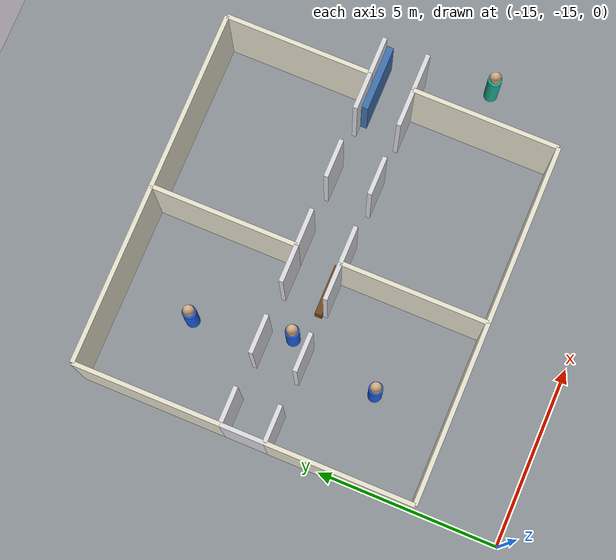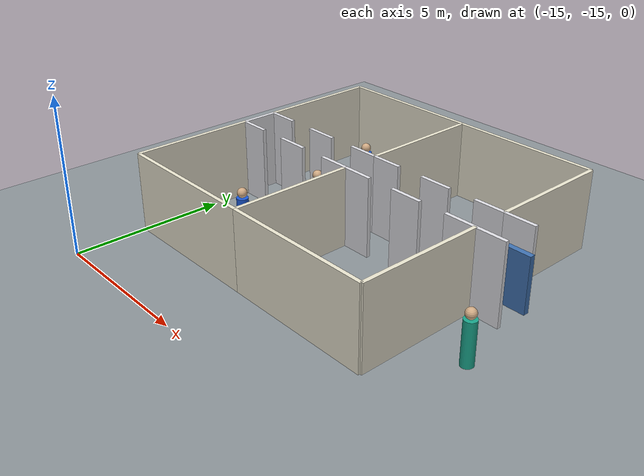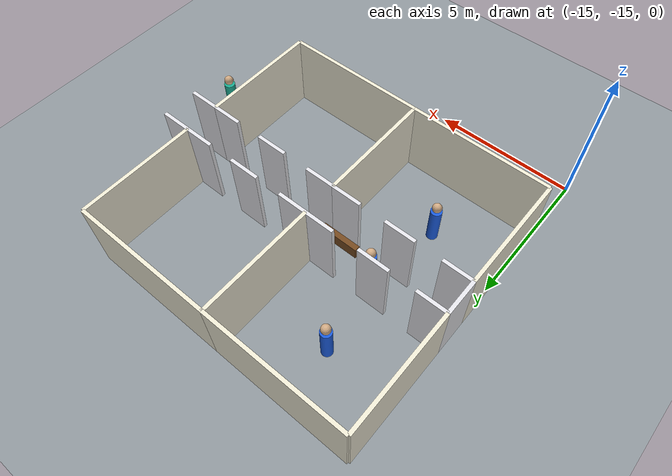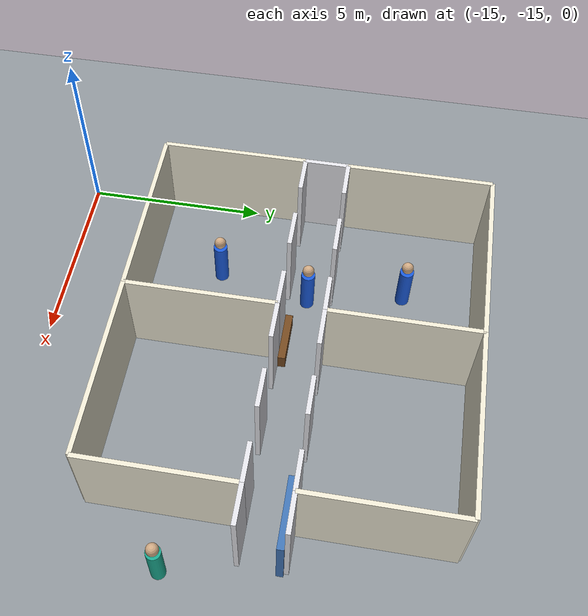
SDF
<sdf version="1.9">
 <world name="school_arena">
  <model name="ground">
   <static>true</static>
   <link name="link">
    <collision name="collision">
     <geometry><plane><normal>0 0 1</normal><size>80 80</size></plane></geometry>
    </collision>
    <visual name="visual">
     <geometry><plane><normal>0 0 1</normal><size>80 80</size></plane></geometry>
     <material><ambient>0.55 0.58 0.60 1</ambient><diffuse>0.55 0.58 0.60 1</diffuse></material>
    </visual>
   </link>
  </model>
  <model name="classroom_01_south">
   <static>true</static>
   <pose>-12.5500 -12.6000 1.3000 0 0 0</pose>
   <link name="link">
    <collision name="collision"><geometry><box><size>4.9000 0.1200 2.6000</size></box></geometry></collision>
    <visual name="visual">
     <geometry><box><size>4.9000 0.1200 2.6000</size></box></geometry>
     <material><ambient>0.92 0.90 0.82 1</ambient><diffuse>0.92 0.90 0.82 1</diffuse></material>
    </visual>
   </link>
  </model>
  <model name="classroom_01_west">
   <static>true</static>
   <pose>-15.0000 -10.6000 1.3000 0 0 0</pose>
   <link name="link">
    <collision name="collision"><geometry><box><size>0.1200 4.0000 2.6000</size></box></geometry></collision>
    <visual name="visual">
     <geometry><box><size>0.1200 4.0000 2.6000</size></box></geometry>
     <material><ambient>0.92 0.90 0.82 1</ambient><diffuse>0.92 0.90 0.82 1</diffuse></material>
    </visual>
   </link>
  </model>
  <model name="classroom_01_east">
   <static>true</static>
   <pose>-10.1000 -10.6000 1.3000 0 0 0</pose>
   <link name="link">
    <collision name="collision"><geometry><box><size>0.1200 4.0000 2.6000</size></box></geometry></collision>
    <visual name="visual">
     <geometry><box><size>0.1200 4.0000 2.6000</size></box></geometry>
     <material><ambient>0.92 0.90 0.82 1</ambient><diffuse>0.92 0.90 0.82 1</diffuse></material>
    </visual>
   </link>
  </model>
  <model name="classroom_01_front_0">
   <static>true</static>
   <pose>-14.4900 -8.6000 1.3000 0 0 0</pose>
   <link name="link">
    <collision name="collision"><geometry><box><size>1.0200 0.1200 2.6000</size></box></geometry></collision>
    <visual name="visual">
     <geometry><box><size>1.0200 0.1200 2.6000</size></box></geometry>
     <material><ambient>0.88 0.88 0.90 1</ambient><diffuse>0.88 0.88 0.90 1</diffuse></material>
    </visual>
   </link>
  </model>
  <model name="classroom_01_front_1">
   <static>true</static>
   <pose>-12.5500 -8.6000 1.3000 0 0 0</pose>
   <link name="link">
    <collision name="collision"><geometry><box><size>1.0600 0.1200 2.6000</size></box></geometry></collision>
    <visual name="visual">
     <geometry><box><size>1.0600 0.1200 2.6000</size></box></geometry>
     <material><ambient>0.88 0.88 0.90 1</ambient><diffuse>0.88 0.88 0.90 1</diffuse></material>
    </visual>
   </link>
  </model>
  <model name="classroom_01_front_2">
   <static>true</static>
   <pose>-10.6100 -8.6000 1.3000 0 0 0</pose>
   <link name="link">
    <collision name="collision"><geometry><box><size>1.0200 0.1200 2.6000</size></box></geometry></collision>
    <visual name="visual">
     <geometry><box><size>1.0200 0.1200 2.6000</size></box></geometry>
     <material><ambient>0.88 0.88 0.90 1</ambient><diffuse>0.88 0.88 0.90 1</diffuse></material>
    </visual>
   </link>
  </model>
  <model name="classroom_02_south">
   <static>true</static>
   <pose>-7.6500 -12.6000 1.3000 0 0 0</pose>
   <link name="link">
    <collision name="collision"><geometry><box><size>4.9000 0.1200 2.6000</size></box></geometry></collision>
    <visual name="visual">
     <geometry><box><size>4.9000 0.1200 2.6000</size></box></geometry>
     <material><ambient>0.92 0.90 0.82 1</ambient><diffuse>0.92 0.90 0.82 1</diffuse></material>
    </visual>
   </link>
  </model>
  <model name="classroom_02_west">
   <static>true</static>
   <pose>-10.1000 -10.6000 1.3000 0 0 0</pose>
   <link name="link">
    <collision name="collision"><geometry><box><size>0.1200 4.0000 2.6000</size></box></geometry></collision>
    <visual name="visual">
     <geometry><box><size>0.1200 4.0000 2.6000</size></box></geometry>
     <material><ambient>0.92 0.90 0.82 1</ambient><diffuse>0.92 0.90 0.82 1</diffuse></material>
    </visual>
   </link>
  </model>
  <model name="classroom_02_east">
   <static>true</static>
   <pose>-5.2000 -10.6000 1.3000 0 0 0</pose>
   <link name="link">
    <collision name="collision"><geometry><box><size>0.1200 4.0000 2.6000</size></box></geometry></collision>
    <visual name="visual">
     <geometry><box><size>0.1200 4.0000 2.6000</size></box></geometry>
     <material><ambient>0.92 0.90 0.82 1</ambient><diffuse>0.92 0.90 0.82 1</diffuse></material>
    </visual>
   </link>
  </model>
  <model name="classroom_02_front_0">
   <static>true</static>
   <pose>-9.5900 -8.6000 1.3000 0 0 0</pose>
   <link name="link">
    <collision name="collision"><geometry><box><size>1.0200 0.1200 2.6000</size></box></geometry></collision>
    <visual name="visual">
     <geometry><box><size>1.0200 0.1200 2.6000</size></box></geometry>
     <material><ambient>0.88 0.88 0.90 1</ambient><diffuse>0.88 0.88 0.90 1</diffuse></material>
    </visual>
   </link>
  </model>
  <model name="classroom_02_front_1">
   <static>true</static>
   <pose>-7.6500 -8.6000 1.3000 0 0 0</pose>
   <link name="link">
    <collision name="collision"><geometry><box><size>1.0600 0.1200 2.6000</size></box></geometry></collision>
    <visual name="visual">
     <geometry><box><size>1.0600 0.1200 2.6000</size></box></geometry>
     <material><ambient>0.88 0.88 0.90 1</ambient><diffuse>0.88 0.88 0.90 1</diffuse></material>
    </visual>
   </link>
  </model>
  <model name="classroom_02_front_2">
   <static>true</static>
   <pose>-5.7100 -8.6000 1.3000 0 0 0</pose>
   <link name="link">
    <collision name="collision"><geometry><box><size>1.0200 0.1200 2.6000</size></box></geometry></collision>
    <visual name="visual">
     <geometry><box><size>1.0200 0.1200 2.6000</size></box></geometry>
     <material><ambient>0.88 0.88 0.90 1</ambient><diffuse>0.88 0.88 0.90 1</diffuse></material>
    </visual>
   </link>
  </model>
  <model name="classroom_03_west">
   <static>true</static>
   <pose>-5.2000 -10.6000 1.3000 0 0 0</pose>
   <link name="link">
    <collision name="collision"><geometry><box><size>0.1200 4.0000 2.6000</size></box></geometry></collision>
    <visual name="visual">
     <geometry><box><size>0.1200 4.0000 2.6000</size></box></geometry>
     <material><ambient>0.92 0.90 0.82 1</ambient><diffuse>0.92 0.90 0.82 1</diffuse></material>
    </visual>
   </link>
  </model>
  <model name="classroom_03_front_0">
   <static>true</static>
   <pose>-4.6900 -8.6000 1.3000 0 0 0</pose>
   <link name="link">
    <collision name="collision"><geometry><box><size>1.0200 0.1200 2.6000</size></box></geometry></collision>
    <visual name="visual">
     <geometry><box><size>1.0200 0.1200 2.6000</size></box></geometry>
     <material><ambient>0.88 0.88 0.90 1</ambient><diffuse>0.88 0.88 0.90 1</diffuse></material>
    </visual>
   </link>
  </model>
  <model name="classroom_07_north">
   <static>true</static>
   <pose>-12.5500 -3.4000 1.3000 0 0 0</pose>
   <link name="link">
    <collision name="collision"><geometry><box><size>4.9000 0.1200 2.6000</size></box></geometry></collision>
    <visual name="visual">
     <geometry><box><size>4.9000 0.1200 2.6000</size></box></geometry>
     <material><ambient>0.92 0.90 0.82 1</ambient><diffuse>0.92 0.90 0.82 1</diffuse></material>
    </visual>
   </link>
  </model>
  <model name="classroom_07_west">
   <static>true</static>
   <pose>-15.0000 -5.4000 1.3000 0 0 0</pose>
   <link name="link">
    <collision name="collision"><geometry><box><size>0.1200 4.0000 2.6000</size></box></geometry></collision>
    <visual name="visual">
     <geometry><box><size>0.1200 4.0000 2.6000</size></box></geometry>
     <material><ambient>0.92 0.90 0.82 1</ambient><diffuse>0.92 0.90 0.82 1</diffuse></material>
    </visual>
   </link>
  </model>
  <model name="classroom_07_east">
   <static>true</static>
   <pose>-10.1000 -5.4000 1.3000 0 0 0</pose>
   <link name="link">
    <collision name="collision"><geometry><box><size>0.1200 4.0000 2.6000</size></box></geometry></collision>
    <visual name="visual">
     <geometry><box><size>0.1200 4.0000 2.6000</size></box></geometry>
     <material><ambient>0.92 0.90 0.82 1</ambient><diffuse>0.92 0.90 0.82 1</diffuse></material>
    </visual>
   </link>
  </model>
  <model name="classroom_07_front_0">
   <static>true</static>
   <pose>-14.4900 -7.4000 1.3000 0 0 0</pose>
   <link name="link">
    <collision name="collision"><geometry><box><size>1.0200 0.1200 2.6000</size></box></geometry></collision>
    <visual name="visual">
     <geometry><box><size>1.0200 0.1200 2.6000</size></box></geometry>
     <material><ambient>0.88 0.88 0.90 1</ambient><diffuse>0.88 0.88 0.90 1</diffuse></material>
    </visual>
   </link>
  </model>
  <model name="classroom_07_front_1">
   <static>true</static>
   <pose>-12.5500 -7.4000 1.3000 0 0 0</pose>
   <link name="link">
    <collision name="collision"><geometry><box><size>1.0600 0.1200 2.6000</size></box></geometry></collision>
    <visual name="visual">
     <geometry><box><size>1.0600 0.1200 2.6000</size></box></geometry>
     <material><ambient>0.88 0.88 0.90 1</ambient><diffuse>0.88 0.88 0.90 1</diffuse></material>
    </visual>
   </link>
  </model>
  <model name="classroom_07_front_2">
   <static>true</static>
   <pose>-10.6100 -7.4000 1.3000 0 0 0</pose>
   <link name="link">
    <collision name="collision"><geometry><box><size>1.0200 0.1200 2.6000</size></box></geometry></collision>
    <visual name="visual">
     <geometry><box><size>1.0200 0.1200 2.6000</size></box></geometry>
     <material><ambient>0.88 0.88 0.90 1</ambient><diffuse>0.88 0.88 0.90 1</diffuse></material>
    </visual>
   </link>
  </model>
  <model name="classroom_08_north">
   <static>true</static>
   <pose>-7.6500 -3.4000 1.3000 0 0 0</pose>
   <link name="link">
    <collision name="collision"><geometry><box><size>4.9000 0.1200 2.6000</size></box></geometry></collision>
    <visual name="visual">
     <geometry><box><size>4.9000 0.1200 2.6000</size></box></geometry>
     <material><ambient>0.92 0.90 0.82 1</ambient><diffuse>0.92 0.90 0.82 1</diffuse></material>
    </visual>
   </link>
  </model>
  <model name="classroom_08_west">
   <static>true</static>
   <pose>-10.1000 -5.4000 1.3000 0 0 0</pose>
   <link name="link">
    <collision name="collision"><geometry><box><size>0.1200 4.0000 2.6000</size></box></geometry></collision>
    <visual name="visual">
     <geometry><box><size>0.1200 4.0000 2.6000</size></box></geometry>
     <material><ambient>0.92 0.90 0.82 1</ambient><diffuse>0.92 0.90 0.82 1</diffuse></material>
    </visual>
   </link>
  </model>
  <model name="classroom_08_east">
   <static>true</static>
   <pose>-5.2000 -5.4000 1.3000 0 0 0</pose>
   <link name="link">
    <collision name="collision"><geometry><box><size>0.1200 4.0000 2.6000</size></box></geometry></collision>
    <visual name="visual">
     <geometry><box><size>0.1200 4.0000 2.6000</size></box></geometry>
     <material><ambient>0.92 0.90 0.82 1</ambient><diffuse>0.92 0.90 0.82 1</diffuse></material>
    </visual>
   </link>
  </model>
  <model name="classroom_08_front_0">
   <static>true</static>
   <pose>-9.5900 -7.4000 1.3000 0 0 0</pose>
   <link name="link">
    <collision name="collision"><geometry><box><size>1.0200 0.1200 2.6000</size></box></geometry></collision>
    <visual name="visual">
     <geometry><box><size>1.0200 0.1200 2.6000</size></box></geometry>
     <material><ambient>0.88 0.88 0.90 1</ambient><diffuse>0.88 0.88 0.90 1</diffuse></material>
    </visual>
   </link>
  </model>
  <model name="classroom_08_front_1">
   <static>true</static>
   <pose>-7.6500 -7.4000 1.3000 0 0 0</pose>
   <link name="link">
    <collision name="collision"><geometry><box><size>1.0600 0.1200 2.6000</size></box></geometry></collision>
    <visual name="visual">
     <geometry><box><size>1.0600 0.1200 2.6000</size></box></geometry>
     <material><ambient>0.88 0.88 0.90 1</ambient><diffuse>0.88 0.88 0.90 1</diffuse></material>
    </visual>
   </link>
  </model>
  <model name="classroom_08_front_2">
   <static>true</static>
   <pose>-5.7100 -7.4000 1.3000 0 0 0</pose>
   <link name="link">
    <collision name="collision"><geometry><box><size>1.0200 0.1200 2.6000</size></box></geometry></collision>
    <visual name="visual">
     <geometry><box><size>1.0200 0.1200 2.6000</size></box></geometry>
     <material><ambient>0.88 0.88 0.90 1</ambient><diffuse>0.88 0.88 0.90 1</diffuse></material>
    </visual>
   </link>
  </model>
  <model name="classroom_09_west">
   <static>true</static>
   <pose>-5.2000 -5.4000 1.3000 0 0 0</pose>
   <link name="link">
    <collision name="collision"><geometry><box><size>0.1200 4.0000 2.6000</size></box></geometry></collision>
    <visual name="visual">
     <geometry><box><size>0.1200 4.0000 2.6000</size></box></geometry>
     <material><ambient>0.92 0.90 0.82 1</ambient><diffuse>0.92 0.90 0.82 1</diffuse></material>
    </visual>
   </link>
  </model>
  <model name="classroom_09_front_0">
   <static>true</static>
   <pose>-4.6900 -7.4000 1.3000 0 0 0</pose>
   <link name="link">
    <collision name="collision"><geometry><box><size>1.0200 0.1200 2.6000</size></box></geometry></collision>
    <visual name="visual">
     <geometry><box><size>1.0200 0.1200 2.6000</size></box></geometry>
     <material><ambient>0.88 0.88 0.90 1</ambient><diffuse>0.88 0.88 0.90 1</diffuse></material>
    </visual>
   </link>
  </model>
  <model name="corridor_A_west_end">
   <static>true</static>
   <pose>-15.0000 -8.0000 1.3000 0 0 0</pose>
   <link name="link">
    <collision name="collision"><geometry><box><size>0.1200 1.2000 2.6000</size></box></geometry></collision>
    <visual name="visual">
     <geometry><box><size>0.1200 1.2000 2.6000</size></box></geometry>
     <material><ambient>0.88 0.88 0.90 1</ambient><diffuse>0.88 0.88 0.90 1</diffuse></material>
    </visual>
   </link>
  </model>
  <model name="bench_01">
   <static>true</static>
   <pose>-10.5000 -8.4300 0.2250 0.0000 0.0000 0.0000</pose>
   <link name="link">
    <collision name="collision"><geometry><box><size>1.4000 0.2000 0.4500</size></box></geometry></collision>
    <visual name="visual">
     <geometry><box><size>1.4000 0.2000 0.4500</size></box></geometry>
     <material><ambient>0.45 0.28 0.12 1</ambient><diffuse>0.45 0.28 0.12 1</diffuse></material>
    </visual>
   </link>
  </model>
  <model name="locker_01">
   <static>true</static>
   <pose>-5.0000 -7.5500 0.9000 0 0 0</pose>
   <link name="link">
    <collision name="collision"><geometry><box><size>1.8000 0.1800 1.8000</size></box></geometry></collision>
    <visual name="visual">
     <geometry><box><size>1.8000 0.1800 1.8000</size></box></geometry>
     <material><ambient>0.25 0.45 0.70 1</ambient><diffuse>0.25 0.45 0.70 1</diffuse></material>
    </visual>
   </link>
  </model>
  <model name="student_head_on_A">
   <static>false</static>
   <pose>-12.000 -8.050 0.000 0 0 0</pose>
   <link name="base_link">
    <kinematic>true</kinematic>
    <gravity>false</gravity>
    <inertial>
     <mass>8.0</mass>
     <inertia><ixx>12.0</ixx><ixy>0</ixy><ixz>0</ixz><iyy>12.0</iyy><iyz>0</iyz><izz>0.45</izz></inertia>
    </inertial>
    <visual name="body">
     <geometry><cylinder><radius>0.19</radius><length>1.35</length></cylinder></geometry>
     <pose>0 0 0.675 0 0 0</pose>
     <material><ambient>0.10 0.35 0.85 1</ambient><diffuse>0.10 0.35 0.85 1</diffuse></material>
    </visual>
    <visual name="head">
     <pose>0 0 1.510 0 0 0</pose>
     <geometry><sphere><radius>0.16</radius></sphere></geometry>
     <material><ambient>0.82 0.67 0.52 1</ambient><diffuse>0.82 0.67 0.52 1</diffuse></material>
    </visual>
   </link>
  </model>
  <model name="student_door_exit">
   <static>false</static>
   <pose>-3.730 -10.400 0.000 0 0 1.5708</pose>
   <link name="base_link">
    <kinematic>true</kinematic>
    <gravity>false</gravity>
    <inertial>
     <mass>8.0</mass>
     <inertia><ixx>12.0</ixx><ixy>0</ixy><ixz>0</ixz><iyy>12.0</iyy><iyz>0</iyz><izz>0.45</izz></inertia>
    </inertial>
    <visual name="body">
     <geometry><cylinder><radius>0.19</radius><length>1.35</length></cylinder></geometry>
     <pose>0 0 0.675 0 0 0</pose>
     <material><ambient>0.10 0.65 0.55 1</ambient><diffuse>0.10 0.65 0.55 1</diffuse></material>
    </visual>
    <visual name="head">
     <pose>0 0 1.510 0 0 0</pose>
     <geometry><sphere><radius>0.16</radius></sphere></geometry>
     <material><ambient>0.82 0.67 0.52 1</ambient><diffuse>0.82 0.67 0.52 1</diffuse></material>
    </visual>
   </link>
  </model>
  <model name="background_agent_4">
   <static>false</static>
   <pose>-12.55000 -5.40000 0.000 0 0 -2.093735</pose>
   <link name="base_link">
    <kinematic>true</kinematic>
    <gravity>false</gravity>
    <inertial>
     <mass>8.0</mass>
     <inertia><ixx>12.0</ixx><ixy>0</ixy><ixz>0</ixz><iyy>12.0</iyy><iyz>0</iyz><izz>0.45</izz></inertia>
    </inertial>
    <visual name="body">
     <geometry><cylinder><radius>0.19</radius><length>1.35</length></cylinder></geometry>
     <pose>0 0 0.675 0 0 0</pose>
     <material><ambient>0.10 0.35 0.85 1</ambient><diffuse>0.10 0.35 0.85 1</diffuse></material>
    </visual>
    <visual name="head">
     <pose>0 0 1.510 0 0 0</pose>
     <geometry><sphere><radius>0.16</radius></sphere></geometry>
     <material><ambient>0.82 0.67 0.52 1</ambient><diffuse>0.82 0.67 0.52 1</diffuse></material>
    </visual>
   </link>
  </model>
  <model name="background_agent_7">
   <static>false</static>
   <pose>-12.55000 -10.60000 0.000 0 0 2.093735</pose>
   <link name="base_link">
    <kinematic>true</kinematic>
    <gravity>false</gravity>
    <inertial>
     <mass>8.0</mass>
     <inertia><ixx>12.0</ixx><ixy>0</ixy><ixz>0</ixz><iyy>12.0</iyy><iyz>0</iyz><izz>0.45</izz></inertia>
    </inertial>
    <visual name="body">
     <geometry><cylinder><radius>0.19</radius><length>1.35</length></cylinder></geometry>
     <pose>0 0 0.675 0 0 0</pose>
     <material><ambient>0.10 0.35 0.85 1</ambient><diffuse>0.10 0.35 0.85 1</diffuse></material>
    </visual>
    <visual name="head">
     <pose>0 0 1.510 0 0 0</pose>
     <geometry><sphere><radius>0.16</radius></sphere></geometry>
     <material><ambient>0.82 0.67 0.52 1</ambient><diffuse>0.82 0.67 0.52 1</diffuse></material>
    </visual>
   </link>
  </model>
 </world>
</sdf>
